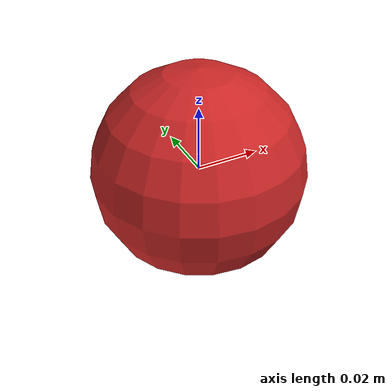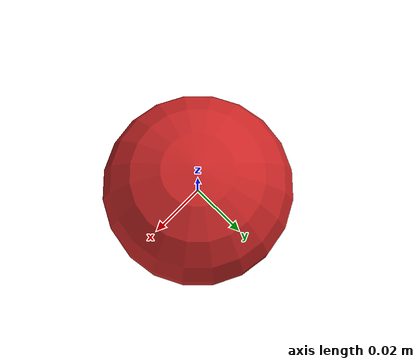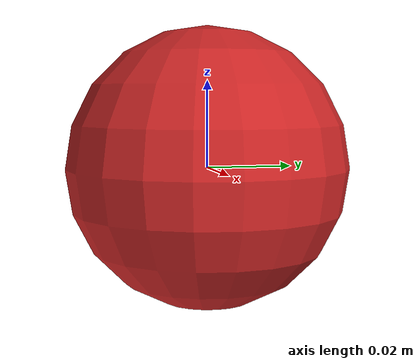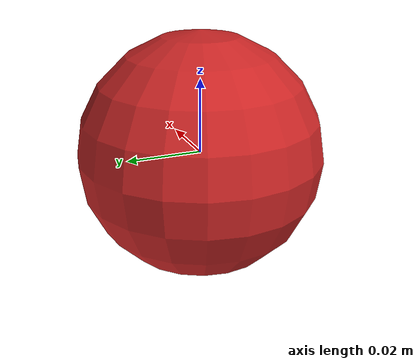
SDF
<?xml version='1.0'?>
<sdf version='1.6'>
  <model name='redball'>
    <link name="link_0">
      <inertial>
        <mass>0.000056</mass>
        <!-- inertia based on solid sphere 2/5 mr^2 -->
        <inertia>
          <ixx>2.37e-8</ixx>
          <iyy>2.37e-8</iyy>
          <izz>2.37e-8</izz>
          <ixy>0</ixy>
          <ixz>0</ixz>
          <iyz>0</iyz>
        </inertia>
      </inertial>
      <collision name="collision">
        <geometry>
          <sphere>
            <radius>0.0325</radius>
          </sphere>
        </geometry>

        <surface>
          <friction>
            <ode>
              <mu>1.0</mu>
              <mu2>1.0</mu2>
            </ode>
          </friction>

          <bounce>
            <restitution_coefficient>0</restitution_coefficient>
            <threshold>1e+06</threshold>
          </bounce>

          <contact>
            <ode>
              <kp>1</kp>
              <kd>0.0</kd>
              <min_depth>0.0</min_depth>
              <max_vel>100</max_vel>
            </ode>
          </contact>

        </surface>

      </collision>
      <visual name="visual">
        <geometry>
          <sphere>
            <radius>0.0325</radius>
          </sphere>
        </geometry>
        <material>
          <script>
            <uri>file://media/materials/scripts/gazebo.material</uri>
            <name>Gazebo/RedBright</name>
          </script>
        </material>
      </visual>
    </link>

    <link name='/odometry_link'>
      <pose frame=''>0 0 0 0 -0 0</pose>
      <inertial>
        <pose frame=''>0 0 0 0 -0 0</pose>
        <mass>1e-05</mass>
        <inertia>
          <ixx>1e-05</ixx>
          <ixy>0</ixy>
          <ixz>0</ixz>
          <iyy>1e-05</iyy>
          <iyz>0</iyz>
          <izz>1e-05</izz>
        </inertia>
      </inertial>
      <self_collide>0</self_collide>
      <kinematic>0</kinematic>
    </link>

    <joint name='/odometry_sensor1_joint' type='revolute'>
      <parent>link_0</parent>
      <child>/odometry_link</child>
      <pose frame=''>0 0 0 0 -0 0</pose>
      <axis>
        <xyz>1 0 0</xyz>
        <use_parent_model_frame>1</use_parent_model_frame>
        <limit>
          <lower>0</lower>
          <upper>0</upper>
          <effort>0</effort>
          <velocity>0</velocity>
        </limit>
        <dynamics>
          <spring_reference>0</spring_reference>
          <spring_stiffness>0</spring_stiffness>
          <damping>0</damping>
          <friction>0</friction>
        </dynamics>
      </axis>
      <physics>
        <ode>
          <limit>
            <cfm>0</cfm>
            <erp>0.2</erp>
          </limit>
          <suspension>
            <cfm>0</cfm>
            <erp>0.2</erp>
          </suspension>
        </ode>
      </physics>
    </joint>

    <static>0</static>
    <allow_auto_disable>1</allow_auto_disable>
    <plugin name='ball_force_controller' filename='libgazebo_ros_force.so'>
      <namespace>/ball</namespace>
      <updateRate>10.0</updateRate>
      <topicName>ball_force</topicName>
      <bodyName>link_0</bodyName>
    </plugin>

    <plugin name="ground_truth" filename="libgazebo_ros_p3d.so">
      <frameName>map</frameName>
      <bodyName>link_0</bodyName>
      <topicName>/ball_odom</topicName>
      <updateRate>100.0</updateRate>
    </plugin>
  </model>
</sdf>
